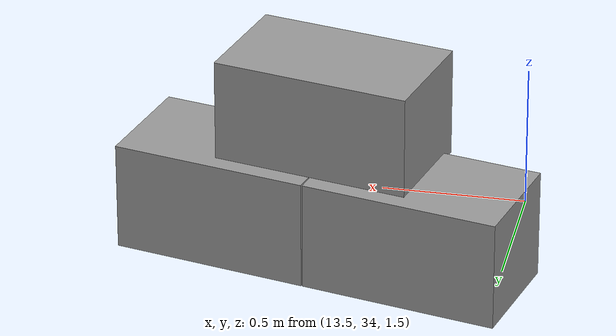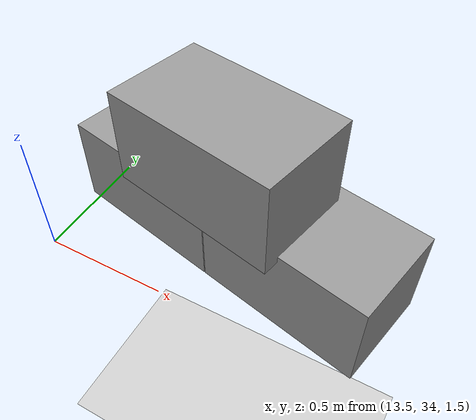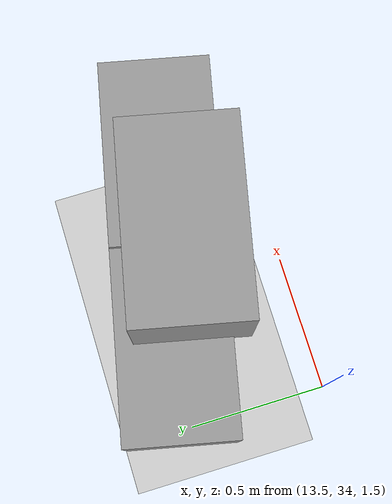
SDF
<sdf version="1.7">
 <world name="default">
  <model name="ground_plane">
   <static>1</static>
   <link name="link">
    <collision name="collision">
     <geometry><plane><normal>0 0 1</normal><size>100 100</size></plane></geometry>
     <surface>
      <contact><collide_bitmask>65535</collide_bitmask></contact>
      <friction><ode><mu>100</mu><mu2>50</mu2></ode></friction>
     </surface>
    </collision>
    <visual name="visual">
     <cast_shadows>0</cast_shadows>
     <geometry><plane><normal>0 0 1</normal><size>100 100</size></plane></geometry>
     <material>
      <script><uri>file://media/materials/scripts/gazebo.material</uri><name>Gazebo/Grey</name></script>
     </material>
    </visual>
   </link>
  </model>
  <model name="Add_Box_clone_clone_3_clone_3">
   <link name="link">
    <inertial>
     <mass>1</mass>
     <inertia>
      <ixx>0.166667</ixx>
      <ixy>0</ixy>
      <ixz>0</ixz>
      <iyy>0.166667</iyy>
      <iyz>0</iyz>
      <izz>0.166667</izz>
     </inertia>
    </inertial>
    <kinematic>1</kinematic>
    <gravity>0</gravity>
    <visual name="visual">
     <geometry><box><size>0.686 0.406 0.381</size></box></geometry>
     <material>
      <script><name>Gazebo/Grey</name><uri>file://media/materials/scripts/gazebo.material</uri></script>
      <shader type="pixel"><normal_map>__default__</normal_map></shader>
      <ambient>0.3 0.3 0.3 1</ambient>
      <diffuse>0.7 0.7 0.7 1</diffuse>
      <specular>0.01 0.01 0.01 1</specular>
      <emissive>0 0 0 1</emissive>
     </material>
    </visual>
    <collision name="collision">
     <geometry><box><size>1 1 1</size></box></geometry>
     <surface>
      <friction>
       <ode><mu>1</mu><mu2>1</mu2><fdir1>0 0 0</fdir1><slip1>0</slip1><slip2>0</slip2></ode>
       <torsional>
        <coefficient>1</coefficient>
        <patch_radius>0</patch_radius>
        <surface_radius>0</surface_radius>
        <use_patch_radius>1</use_patch_radius>
        <ode><slip>0</slip></ode>
       </torsional>
      </friction>
      <bounce><restitution_coefficient>0</restitution_coefficient><threshold>1e+06</threshold></bounce>
      <contact>
       <collide_without_contact>0</collide_without_contact>
       <collide_without_contact_bitmask>1</collide_without_contact_bitmask>
       <collide_bitmask>1</collide_bitmask>
       <ode>
        <soft_cfm>0</soft_cfm>
        <soft_erp>0.2</soft_erp>
        <kp>1e+13</kp>
        <kd>1</kd>
        <max_vel>0.01</max_vel>
        <min_depth>0</min_depth>
       </ode>
       <bullet>
        <split_impulse>1</split_impulse>
        <split_impulse_penetration_threshold>-0.01</split_impulse_penetration_threshold>
        <soft_cfm>0</soft_cfm>
        <soft_erp>0.2</soft_erp>
        <kp>1e+13</kp>
        <kd>1</kd>
       </bullet>
      </contact>
     </surface>
    </collision>
   </link>
   <link name="link_clone">
    <inertial>
     <mass>1</mass>
     <inertia>
      <ixx>0.166667</ixx>
      <ixy>0</ixy>
      <ixz>0</ixz>
      <iyy>0.166667</iyy>
      <iyz>0</iyz>
      <izz>0.166667</izz>
     </inertia>
    </inertial>
    <pose>-0.343354 -0.063316 0.354303 1e-05 -0 0</pose>
    <gravity>0</gravity>
    <visual name="visual">
     <geometry><box><size>0.686 0.406 0.381</size></box></geometry>
     <material>
      <script><name>Gazebo/Grey</name><uri>file://media/materials/scripts/gazebo.material</uri></script>
      <shader type="pixel"><normal_map>__default__</normal_map></shader>
      <ambient>0.3 0.3 0.3 1</ambient>
      <diffuse>0.7 0.7 0.7 1</diffuse>
      <specular>0.01 0.01 0.01 1</specular>
      <emissive>0 0 0 1</emissive>
     </material>
    </visual>
    <collision name="collision">
     <geometry><box><size>1 1 1</size></box></geometry>
     <surface>
      <friction>
       <ode><mu>1</mu><mu2>1</mu2><fdir1>0 0 0</fdir1><slip1>0</slip1><slip2>0</slip2></ode>
       <torsional>
        <coefficient>1</coefficient>
        <patch_radius>0</patch_radius>
        <surface_radius>0</surface_radius>
        <use_patch_radius>1</use_patch_radius>
        <ode><slip>0</slip></ode>
       </torsional>
      </friction>
      <bounce><restitution_coefficient>0</restitution_coefficient><threshold>1e+06</threshold></bounce>
      <contact>
       <collide_without_contact>0</collide_without_contact>
       <collide_without_contact_bitmask>1</collide_without_contact_bitmask>
       <collide_bitmask>1</collide_bitmask>
       <ode>
        <soft_cfm>0</soft_cfm>
        <soft_erp>0.2</soft_erp>
        <kp>1e+13</kp>
        <kd>1</kd>
        <max_vel>0.01</max_vel>
        <min_depth>0</min_depth>
       </ode>
       <bullet>
        <split_impulse>1</split_impulse>
        <split_impulse_penetration_threshold>-0.01</split_impulse_penetration_threshold>
        <soft_cfm>0</soft_cfm>
        <soft_erp>0.2</soft_erp>
        <kp>1e+13</kp>
        <kd>1</kd>
       </bullet>
      </contact>
     </surface>
    </collision>
   </link>
   <link name="link_clone_clone">
    <inertial>
     <mass>1</mass>
     <inertia>
      <ixx>0.166667</ixx>
      <ixy>0</ixy>
      <ixz>0</ixz>
      <iyy>0.166667</iyy>
      <iyz>0</iyz>
      <izz>0.166667</izz>
     </inertia>
    </inertial>
    <pose>-0.690786 -0.000183 -1e-05 2e-05 -0 0</pose>
    <gravity>0</gravity>
    <visual name="visual">
     <geometry><box><size>0.686 0.406 0.381</size></box></geometry>
     <material>
      <script><name>Gazebo/Grey</name><uri>file://media/materials/scripts/gazebo.material</uri></script>
      <shader type="pixel"><normal_map>__default__</normal_map></shader>
      <ambient>0.3 0.3 0.3 1</ambient>
      <diffuse>0.7 0.7 0.7 1</diffuse>
      <specular>0.01 0.01 0.01 1</specular>
      <emissive>0 0 0 1</emissive>
     </material>
    </visual>
    <collision name="collision">
     <geometry><box><size>1 1 1</size></box></geometry>
     <surface>
      <friction>
       <ode><mu>1</mu><mu2>1</mu2><fdir1>0 0 0</fdir1><slip1>0</slip1><slip2>0</slip2></ode>
       <torsional>
        <coefficient>1</coefficient>
        <patch_radius>0</patch_radius>
        <surface_radius>0</surface_radius>
        <use_patch_radius>1</use_patch_radius>
        <ode><slip>0</slip></ode>
       </torsional>
      </friction>
      <bounce><restitution_coefficient>0</restitution_coefficient><threshold>1e+06</threshold></bounce>
      <contact>
       <collide_without_contact>0</collide_without_contact>
       <collide_without_contact_bitmask>1</collide_without_contact_bitmask>
       <collide_bitmask>1</collide_bitmask>
       <ode>
        <soft_cfm>0</soft_cfm>
        <soft_erp>0.2</soft_erp>
        <kp>1e+13</kp>
        <kd>1</kd>
        <max_vel>0.01</max_vel>
        <min_depth>0</min_depth>
       </ode>
       <bullet>
        <split_impulse>1</split_impulse>
        <split_impulse_penetration_threshold>-0.01</split_impulse_penetration_threshold>
        <soft_cfm>0</soft_cfm>
        <soft_erp>0.2</soft_erp>
        <kp>1e+13</kp>
        <kd>1</kd>
       </bullet>
      </contact>
     </surface>
    </collision>
   </link>
   <static>0</static>
   <pose>14.454 34.3288 1.61518 0 0 -0.218223</pose>
  </model>
 </world>
</sdf>
